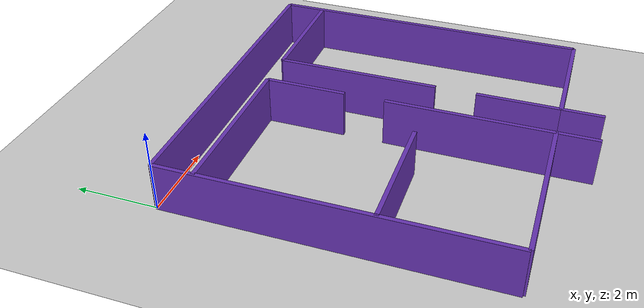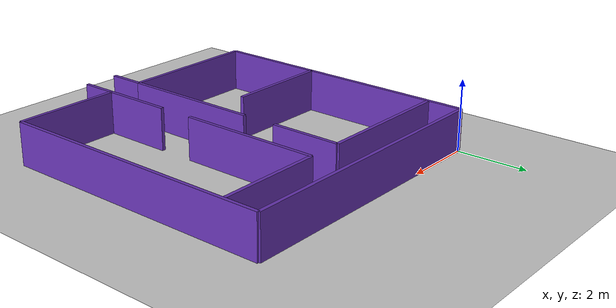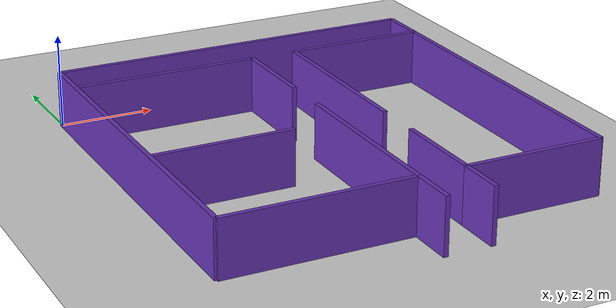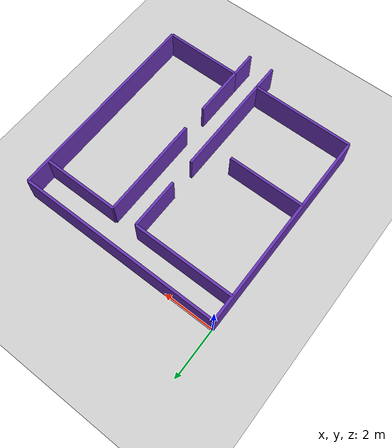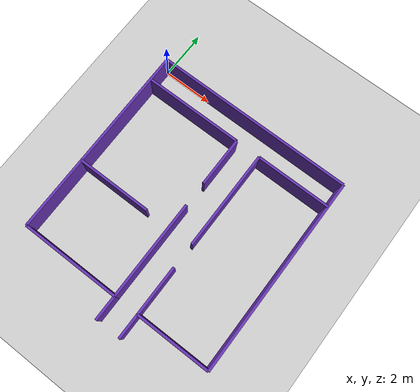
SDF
<sdf version="1.8">
 <world name="my_world">
  <physics name="1ms" type="ignored">
   <max_step_size>0.001</max_step_size>
   <real_time_factor>1.0</real_time_factor>
  </physics>
  <plugin filename="libignition-gazebo-physics-system.so" name="ignition::gazebo::systems::Physics"/>
  <plugin filename="libignition-gazebo-user-commands-system.so" name="ignition::gazebo::systems::UserCommands"/>
  <plugin filename="libignition-gazebo-scene-broadcaster-system.so" name="ignition::gazebo::systems::SceneBroadcaster"/>
  <light type="directional" name="sun">
   <pose>0 0 10 0 0 0</pose>
   <diffuse>0.8 0.8 0.8 1</diffuse>
   <specular>0.2 0.2 0.2 1</specular>
   <attenuation>
    <range>1000</range>
    <constant>0.9</constant>
    <linear>0.01</linear>
    <quadratic>0.001</quadratic>
   </attenuation>
   <direction>-0.5 0.1 -0.9</direction>
  </light>
  <model name="ground_plane">
   <static>true</static>
   <link name="ground">
    <collision name="collision"><geometry><plane><normal>0 0 1</normal></plane></geometry></collision>
    <visual name="visual">
     <geometry><plane><normal>0 0 1</normal><size>100 100</size></plane></geometry>
     <material>
      <ambient>0.8 0.8 0.8 1</ambient>
      <diffuse>0.8 0.8 0.8 1</diffuse>
      <specular>0.8 0.8 0.8 1</specular>
     </material>
    </visual>
   </link>
  </model>
  <include><uri>./wall/8.sdf</uri><name>wall_1</name><pose>0 -4 0.6 0 0 1.5707</pose></include>
  <include><uri>./wall/8.sdf</uri><name>wall_2</name><pose>4 0 0.6 0 0 0</pose></include>
  <include><uri>./wall/8.sdf</uri><name>wall_3</name><pose>8 -4 0.6 0 0 1.5707</pose></include>
  <include><uri>./wall/4.sdf</uri><name>wall_4</name><pose>5 -3 0.6 0 0 1.5707</pose></include>
  <include><uri>./wall/4.sdf</uri><name>wall_5</name><pose>2 -1 0.6 0 0 0</pose></include>
  <include><uri>./wall/4.sdf</uri><name>wall_6</name><pose>2 -8 0.6 0 0 0</pose></include>
  <include><uri>./wall/4.sdf</uri><name>wall_7</name><pose>4 -6 0.6 0 0 1.5707</pose></include>
  <include><uri>./wall/3.sdf</uri><name>wall_8</name><pose>1.5 -5 0.6 0 0 0</pose></include>
  <include><uri>./wall/3.sdf</uri><name>wall_9</name><pose>6.5 -1 0.6 0 0 0</pose></include>
  <include><uri>./wall/3.sdf</uri><name>wall_10</name><pose>6.5 -8 0.6 0 0 0</pose></include>
  <include><uri>./wall/2.sdf</uri><name>wall_11</name><pose>4 -2 0.6 0 0 1.5707</pose></include>
  <include><uri>./wall/2.sdf</uri><name>wall_12</name><pose>5 -7 0.6 0 0 1.5707</pose></include>
  <include><uri>./wall/1.sdf</uri><name>wall_13</name><pose>4 -8.5 0.6 0 0 1.5707</pose></include>
  <include><uri>./wall/1.sdf</uri><name>wall_14</name><pose>5 -8.5 0.6 0 0 1.5707</pose></include>
  <plugin filename="libignition-gazebo-imu-system.so" name="ignition::gazebo::systems::Imu"/>
  <plugin filename="libignition-gazebo-sensors-system.so" name="ignition::gazebo::systems::Sensors">
   <render_engine>ogre2</render_engine>
  </plugin>
 </world>
</sdf>

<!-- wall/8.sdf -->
<sdf version="1.9">
  <model name="wall">
  <static>true</static>
    <link name="wall_link">
      <collision name="collision">
        <geometry>
          <box>
            <size>8.0 0.1 1.2</size>
          </box>
        </geometry>
      </collision>

      <visual name="visual">
        <geometry>
          <box>
            <size>8.0 0.1 1.2</size>
          </box>
        </geometry>
        <material>
          <ambient>0.4 0.2 0.7 1</ambient>
          <diffuse>0.4 0.2 0.7 1</diffuse>
          <specular>0.4 0.2 0.7 1</specular>
        </material>
      </visual>

      <inertial>
        <mass>10.0</mass>
        <inertia>
          <ixx>0.1</ixx>
          <iyy>0.1</iyy>
          <izz>0.1</izz>
        </inertia>
      </inertial>
    </link>
  </model>
</sdf>

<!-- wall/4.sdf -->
<sdf version="1.9">
  <model name="wall">
  <static>true</static>
    <link name="wall_link">
      <collision name="collision">
        <geometry>
          <box>
            <size>4.0 0.1 1.2</size>
          </box>
        </geometry>
      </collision>

      <visual name="visual">
        <geometry>
          <box>
            <size>4.0 0.1 1.2</size>
          </box>
        </geometry>
        <material>
          <ambient>0.4 0.2 0.7 1</ambient>
          <diffuse>0.4 0.2 0.7 1</diffuse>
          <specular>0.4 0.2 0.7 1</specular>
        </material>
      </visual>

      <inertial>
        <mass>10.0</mass>
        <inertia>
          <ixx>0.1</ixx>
          <iyy>0.1</iyy>
          <izz>0.1</izz>
        </inertia>
      </inertial>
    </link>
  </model>
</sdf>

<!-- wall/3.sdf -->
<sdf version="1.9">
  <model name="wall">
  <static>true</static>
    <link name="wall_link">
      <collision name="collision">
        <geometry>
          <box>
            <size>3.0 0.1 1.2</size>
          </box>
        </geometry>
      </collision>

      <visual name="visual">
        <geometry>
          <box>
            <size>3.0 0.1 1.2</size>
          </box>
        </geometry>
        <material>
          <ambient>0.4 0.2 0.7 1</ambient>
          <diffuse>0.4 0.2 0.7 1</diffuse>
          <specular>0.4 0.2 0.7 1</specular>
        </material>
      </visual>

      <inertial>
        <mass>10.0</mass>
        <inertia>
          <ixx>0.1</ixx>
          <iyy>0.1</iyy>
          <izz>0.1</izz>
        </inertia>
      </inertial>
    </link>
  </model>
</sdf>

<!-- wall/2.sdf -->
<sdf version="1.9">
  <model name="wall">
  <static>true</static>
    <link name="wall_link">
      <collision name="collision">
        <geometry>
          <box>
            <size>2.0 0.1 1.2</size>
          </box>
        </geometry>
      </collision>

      <visual name="visual">
        <geometry>
          <box>
            <size>2.0 0.1 1.2</size>
          </box>
        </geometry>
        <material>
          <ambient>0.4 0.2 0.7 1</ambient>
          <diffuse>0.4 0.2 0.7 1</diffuse>
          <specular>0.4 0.2 0.7 1</specular>
        </material>
      </visual>

      <inertial>
        <mass>10.0</mass>
        <inertia>
          <ixx>0.1</ixx>
          <iyy>0.1</iyy>
          <izz>0.1</izz>
        </inertia>
      </inertial>
    </link>
  </model>
</sdf>

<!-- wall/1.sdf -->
<sdf version="1.9">
  <model name="wall">
    <static>true</static>
    <link name="wall_link">
      <collision name="collision">
        <geometry>
          <box>
            <size>1.0 0.1 1.2</size>
          </box>
        </geometry>
      </collision>

      <visual name="visual">
        <geometry>
          <box>
            <size>1.0 0.1 1.2</size>
          </box>
        </geometry>
        <material>
          <ambient>0.4 0.2 0.7 1</ambient>
          <diffuse>0.4 0.2 0.7 1</diffuse>
          <specular>0.4 0.2 0.7 1</specular>
        </material>
      </visual>

      <inertial>
        <mass>10.0</mass>
        <inertia>
          <ixx>0.1</ixx>
          <iyy>0.1</iyy>
          <izz>0.1</izz>
        </inertia>
      </inertial>
    </link>
  </model>
</sdf>
